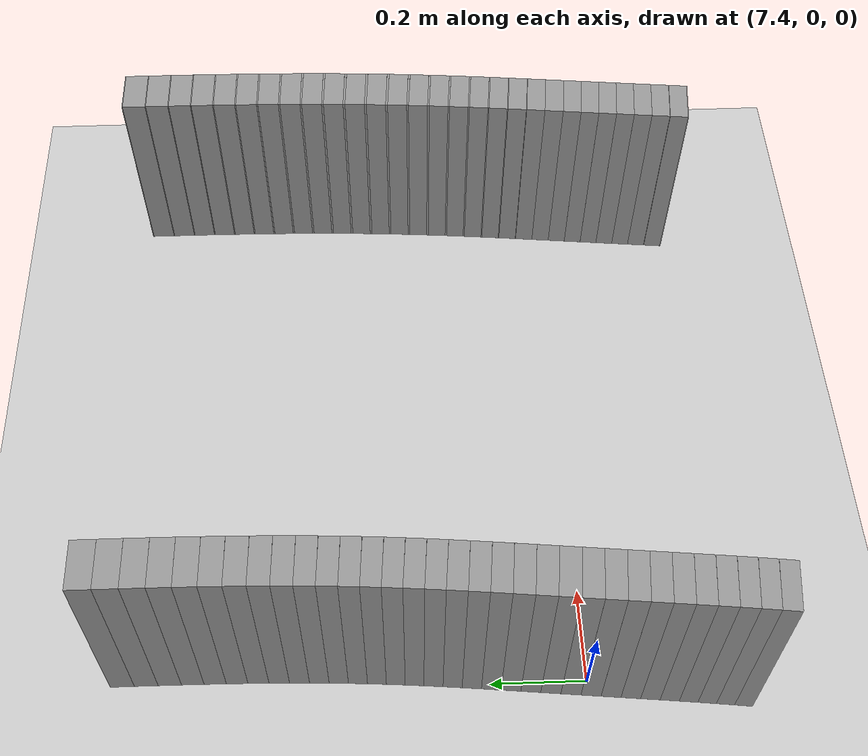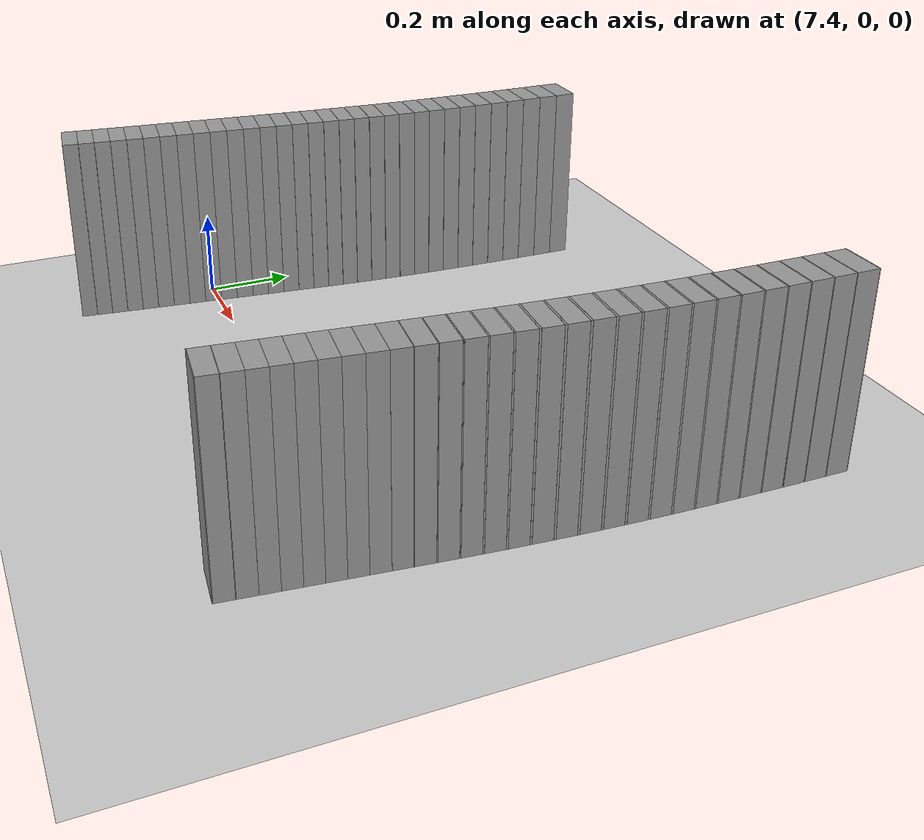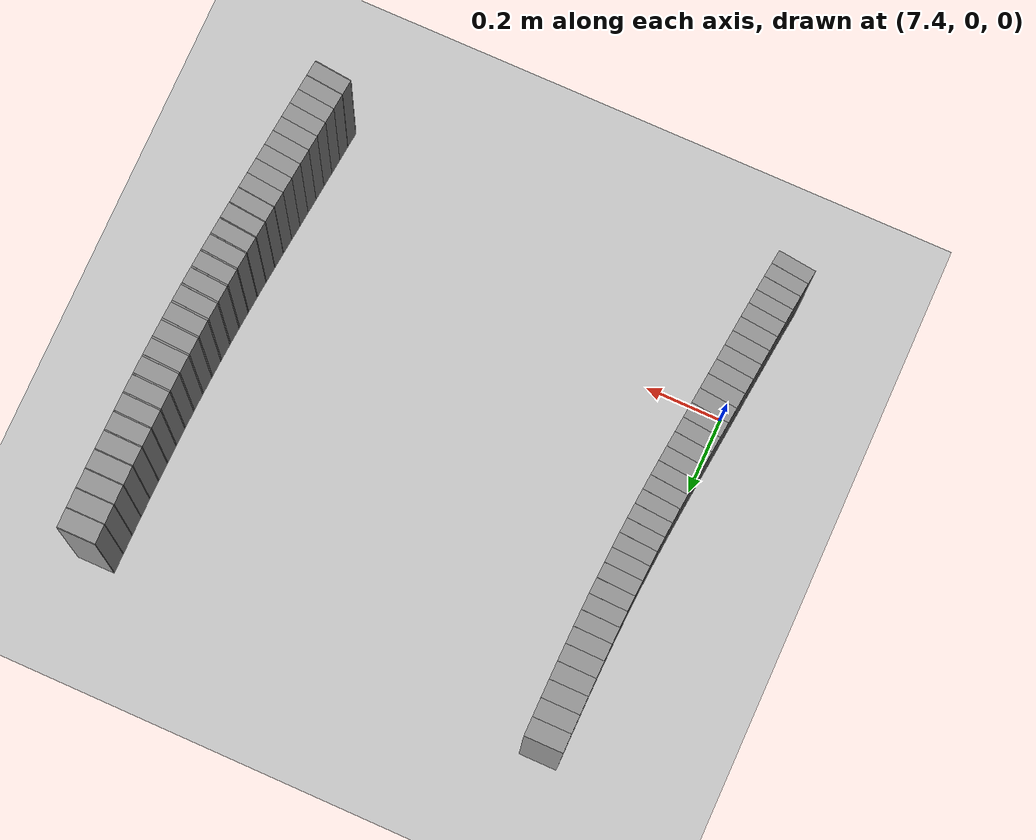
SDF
<sdf version="1.6">
 <world name="default">
  <include><uri>model://ground_plane</uri></include>
  <include><uri>model://sun</uri></include>
  <model name="wall_723_outward">
   <static>true</static>
   <link name="link">
    <collision name="collision">
     <geometry><box><size>0.036213933264388556 0.1 0.45</size></box></geometry>
    </collision>
    <visual name="visual">
     <geometry><box><size>0.036213933264388556 0.1 0.45</size></box></geometry>
     <material>
      <script><uri>file://media/materials/scripts/gazebo.material</uri><name>Gazebo/Gray</name></script>
     </material>
    </visual>
   </link>
   <pose>7.38594994053062 -0.31619066393449397 0.225 0 0 1.4495437734947556</pose>
  </model>
  <model name="wall_724_outward">
   <static>true</static>
   <link name="link">
    <collision name="collision">
     <geometry><box><size>0.036745178594355055 0.1 0.45</size></box></geometry>
    </collision>
    <visual name="visual">
     <geometry><box><size>0.036745178594355055 0.1 0.45</size></box></geometry>
     <material>
      <script><uri>file://media/materials/scripts/gazebo.material</uri><name>Gazebo/Gray</name></script>
     </material>
    </visual>
   </link>
   <pose>7.39025472776831 -0.2799661524615926 0.225 0 0 1.4554427335672206</pose>
  </model>
  <model name="wall_725_outward">
   <static>true</static>
   <link name="link">
    <collision name="collision">
     <geometry><box><size>0.037352697932077183 0.1 0.45</size></box></geometry>
    </collision>
    <visual name="visual">
     <geometry><box><size>0.037352697932077183 0.1 0.45</size></box></geometry>
     <material>
      <script><uri>file://media/materials/scripts/gazebo.material</uri><name>Gazebo/Gray</name></script>
     </material>
    </visual>
   </link>
   <pose>7.394428628874721 -0.24315318950826725 0.225 0 0 1.4603117012523679</pose>
  </model>
  <model name="wall_726_outward">
   <static>true</static>
   <link name="link">
    <collision name="collision">
     <geometry><box><size>0.03800556490705668 0.1 0.45</size></box></geometry>
    </collision>
    <visual name="visual">
     <geometry><box><size>0.03800556490705668 0.1 0.45</size></box></geometry>
     <material>
      <script><uri>file://media/materials/scripts/gazebo.material</uri><name>Gazebo/Gray</name></script>
     </material>
    </visual>
   </link>
   <pose>7.398512394519603 -0.20569608301618028 0.225 0 0 1.4640561065074442</pose>
  </model>
  <model name="wall_727_outward">
   <static>true</static>
   <link name="link">
    <collision name="collision">
     <geometry><box><size>0.038668028377005316 0.1 0.45</size></box></geometry>
    </collision>
    <visual name="visual">
     <geometry><box><size>0.038668028377005316 0.1 0.45</size></box></geometry>
     <material>
      <script><uri>file://media/materials/scripts/gazebo.material</uri><name>Gazebo/Gray</name></script>
     </material>
    </visual>
   </link>
   <pose>7.402546821744884 -0.1675721941736497 0.225 0 0 1.4666506758473807</pose>
  </model>
  <model name="wall_728_outward">
   <static>true</static>
   <link name="link">
    <collision name="collision">
     <geometry><box><size>0.03929286062176304 0.1 0.45</size></box></geometry>
    </collision>
    <visual name="visual">
     <geometry><box><size>0.03929286062176304 0.1 0.45</size></box></geometry>
     <material>
      <script><uri>file://media/materials/scripts/gazebo.material</uri><name>Gazebo/Gray</name></script>
     </material>
    </visual>
   </link>
   <pose>7.4065697174644916 -0.12879990377386055 0.225 0 0 1.4681558475595902</pose>
  </model>
  <model name="wall_729_outward">
   <static>true</static>
   <link name="link">
    <collision name="collision">
     <geometry><box><size>0.03979525407327376 0.1 0.45</size></box></geometry>
    </collision>
    <visual name="visual">
     <geometry><box><size>0.03979525407327376 0.1 0.45</size></box></geometry>
     <material>
      <script><uri>file://media/materials/scripts/gazebo.material</uri><name>Gazebo/Gray</name></script>
     </material>
    </visual>
   </link>
   <pose>7.41061016438694 -0.08946280761945022 0.225 0 0 1.4687242753998215</pose>
  </model>
  <model name="wall_730_outward">
   <static>true</static>
   <link name="link">
    <collision name="collision">
     <geometry><box><size>0.040144140713708996 0.1 0.45</size></box></geometry>
    </collision>
    <visual name="visual">
     <geometry><box><size>0.040144140713708996 0.1 0.45</size></box></geometry>
     <material>
      <script><uri>file://media/materials/scripts/gazebo.material</uri><name>Gazebo/Gray</name></script>
     </material>
    </visual>
   </link>
   <pose>7.4146858278760375 -0.04970144863735605 0.225 0 0 1.468576277259668</pose>
  </model>
  <model name="wall_731_outward">
   <static>true</static>
   <link name="link">
    <collision name="collision">
     <geometry><box><size>0.040527757411083026 0.1 0.45</size></box></geometry>
    </collision>
    <visual name="visual">
     <geometry><box><size>0.040527757411083026 0.1 0.45</size></box></geometry>
     <material>
      <script><uri>file://media/materials/scripts/gazebo.material</uri><name>Gazebo/Gray</name></script>
     </material>
    </visual>
   </link>
   <pose>7.418813291802185 -0.009577232807421815 0.225 0 0 1.4680058757506327</pose>
  </model>
  <model name="wall_732_outward">
   <static>true</static>
   <link name="link">
    <collision name="collision">
     <geometry><box><size>0.040752595745444514 0.1 0.45</size></box></geometry>
    </collision>
    <visual name="visual">
     <geometry><box><size>0.040752595745444514 0.1 0.45</size></box></geometry>
     <material>
      <script><uri>file://media/materials/scripts/gazebo.material</uri><name>Gazebo/Gray</name></script>
     </material>
    </visual>
   </link>
   <pose>7.422996754371545 0.030847047185561444 0.225 0 0 1.46734508425111</pose>
  </model>
  <model name="wall_733_outward">
   <static>true</static>
   <link name="link">
    <collision name="collision">
     <geometry><box><size>0.04079668458981946 0.1 0.45</size></box></geometry>
    </collision>
    <visual name="visual">
     <geometry><box><size>0.04079668458981946 0.1 0.45</size></box></geometry>
     <material>
      <script><uri>file://media/materials/scripts/gazebo.material</uri><name>Gazebo/Gray</name></script>
     </material>
    </visual>
   </link>
   <pose>7.427216298480538 0.07140276994754437 0.225 0 0 1.4669075603256816</pose>
  </model>
  <model name="wall_734_outward">
   <static>true</static>
   <link name="link">
    <collision name="collision">
     <geometry><box><size>0.04050996226966357 0.1 0.45</size></box></geometry>
    </collision>
    <visual name="visual">
     <geometry><box><size>0.04050996226966357 0.1 0.45</size></box></geometry>
     <material>
      <script><uri>file://media/materials/scripts/gazebo.material</uri><name>Gazebo/Gray</name></script>
     </material>
    </visual>
   </link>
   <pose>7.431430127927049 0.11183711603106883 0.225 0 0 1.4670068922244943</pose>
  </model>
  <model name="wall_735_outward">
   <static>true</static>
   <link name="link">
    <collision name="collision">
     <geometry><box><size>0.040243491667796685 0.1 0.45</size></box></geometry>
    </collision>
    <visual name="visual">
     <geometry><box><size>0.040243491667796685 0.1 0.45</size></box></geometry>
     <material>
      <script><uri>file://media/materials/scripts/gazebo.material</uri><name>Gazebo/Gray</name></script>
     </material>
    </visual>
   </link>
   <pose>7.435595145040496 0.1519984454204576 0.225 0 0 1.4679132775247115</pose>
  </model>
  <model name="wall_736_outward">
   <static>true</static>
   <link name="link">
    <collision name="collision">
     <geometry><box><size>0.039909157392282964 0.1 0.45</size></box></geometry>
    </collision>
    <visual name="visual">
     <geometry><box><size>0.039909157392282964 0.1 0.45</size></box></geometry>
     <material>
      <script><uri>file://media/materials/scripts/gazebo.material</uri><name>Gazebo/Gray</name></script>
     </material>
    </visual>
   </link>
   <pose>7.43967312280118 0.19186673381568795 0.225 0 0 1.4698238427092851</pose>
  </model>
  <model name="wall_737_outward">
   <static>true</static>
   <link name="link">
    <collision name="collision">
     <geometry><box><size>0.03954947602758884 0.1 0.45</size></box></geometry>
    </collision>
    <visual name="visual">
     <geometry><box><size>0.03954947602758884 0.1 0.45</size></box></geometry>
     <material>
      <script><uri>file://media/materials/scripts/gazebo.material</uri><name>Gazebo/Gray</name></script>
     </material>
    </visual>
   </link>
   <pose>7.44361830550032 0.23139963812282188 0.225 0 0 1.472851333756722</pose>
  </model>
  <model name="wall_738_outward">
   <static>true</static>
   <link name="link">
    <collision name="collision">
     <geometry><box><size>0.03921505452156786 0.1 0.45</size></box></geometry>
    </collision>
    <visual name="visual">
     <geometry><box><size>0.03921505452156786 0.1 0.45</size></box></geometry>
     <material>
      <script><uri>file://media/materials/scripts/gazebo.material</uri><name>Gazebo/Gray</name></script>
     </material>
    </visual>
   </link>
   <pose>7.447387848212765 0.27060099767016776 0.225 0 0 1.4770316136638229</pose>
  </model>
  <model name="wall_739_outward">
   <static>true</static>
   <link name="link">
    <collision name="collision">
     <geometry><box><size>0.03894925963270935 0.1 0.45</size></box></geometry>
    </collision>
    <visual name="visual">
     <geometry><box><size>0.03894925963270935 0.1 0.45</size></box></geometry>
     <material>
      <script><uri>file://media/materials/scripts/gazebo.material</uri><name>Gazebo/Gray</name></script>
     </material>
    </visual>
   </link>
   <pose>7.450944942895108 0.3095208062927536 0.225 0 0 1.4822943945767697</pose>
  </model>
  <model name="wall_740_outward">
   <static>true</static>
   <link name="link">
    <collision name="collision">
     <geometry><box><size>0.03878622096743389 0.1 0.45</size></box></geometry>
    </collision>
    <visual name="visual">
     <geometry><box><size>0.03878622096743389 0.1 0.45</size></box></geometry>
     <material>
      <script><uri>file://media/materials/scripts/gazebo.material</uri><name>Gazebo/Gray</name></script>
     </material>
    </visual>
   </link>
   <pose>7.454260007884426 0.3482467270276123 0.225 0 0 1.4885211691429439</pose>
  </model>
  <model name="wall_741_outward">
   <static>true</static>
   <link name="link">
    <collision name="collision">
     <geometry><box><size>0.03876193145462637 0.1 0.45</size></box></geometry>
    </collision>
    <visual name="visual">
     <geometry><box><size>0.03876193145462637 0.1 0.45</size></box></geometry>
     <material>
      <script><uri>file://media/materials/scripts/gazebo.material</uri><name>Gazebo/Gray</name></script>
     </material>
    </visual>
   </link>
   <pose>7.4573112373206065 0.3869003238708277 0.225 0 0 1.4955247981549085</pose>
  </model>
  <model name="wall_742_outward">
   <static>true</static>
   <link name="link">
    <collision name="collision">
     <geometry><box><size>0.03889911755652745 0.1 0.45</size></box></geometry>
    </collision>
    <visual name="visual">
     <geometry><box><size>0.03889911755652745 0.1 0.45</size></box></geometry>
     <material>
      <script><uri>file://media/materials/scripts/gazebo.material</uri><name>Gazebo/Gray</name></script>
     </material>
    </visual>
   </link>
   <pose>7.460084811900798 0.42563138919874965 0.225 0 0 1.5030763668896983</pose>
  </model>
  <model name="wall_743_outward">
   <static>true</static>
   <link name="link">
    <collision name="collision">
     <geometry><box><size>0.03921418257245954 0.1 0.45</size></box></geometry>
    </collision>
    <visual name="visual">
     <geometry><box><size>0.03921418257245954 0.1 0.45</size></box></geometry>
     <material>
      <script><uri>file://media/materials/scripts/gazebo.material</uri><name>Gazebo/Gray</name></script>
     </material>
    </visual>
   </link>
   <pose>7.46257422676623 0.4646083216850898 0.225 0 0 1.5109200622255066</pose>
  </model>
  <model name="wall_744_outward">
   <static>true</static>
   <link name="link">
    <collision name="collision">
     <geometry><box><size>0.0397077498544705 0.1 0.45</size></box></geometry>
    </collision>
    <visual name="visual">
     <geometry><box><size>0.0397077498544705 0.1 0.45</size></box></geometry>
     <material>
      <script><uri>file://media/materials/scripts/gazebo.material</uri><name>Gazebo/Gray</name></script>
     </material>
    </visual>
   </link>
   <pose>7.464779428469265 0.5040073163549572 0.225 0 0 1.5187979710569919</pose>
  </model>
  <model name="wall_745_outward">
   <static>true</static>
   <link name="link">
    <collision name="collision">
     <geometry><box><size>0.04037026933674354 0.1 0.45</size></box></geometry>
    </collision>
    <visual name="visual">
     <geometry><box><size>0.04037026933674354 0.1 0.45</size></box></geometry>
     <material>
      <script><uri>file://media/materials/scripts/gazebo.material</uri><name>Gazebo/Gray</name></script>
     </material>
    </visual>
   </link>
   <pose>7.466705767347345 0.5439996646013424 0.225 0 0 1.5264702339205196</pose>
  </model>
  <model name="wall_746_outward">
   <static>true</static>
   <link name="link">
    <collision name="collision">
     <geometry><box><size>0.04118557421784616 0.1 0.45</size></box></geometry>
    </collision>
    <visual name="visual">
     <geometry><box><size>0.04118557421784616 0.1 0.45</size></box></geometry>
     <material>
      <script><uri>file://media/materials/scripts/gazebo.material</uri><name>Gazebo/Gray</name></script>
     </material>
    </visual>
   </link>
   <pose>7.468363290733695 0.5847436163337587 0.225 0 0 1.5337317497102874</pose>
  </model>
  <model name="wall_747_outward">
   <static>true</static>
   <link name="link">
    <collision name="collision">
     <geometry><box><size>0.04212380520808145 0.1 0.45</size></box></geometry>
    </collision>
    <visual name="visual">
     <geometry><box><size>0.04212380520808145 0.1 0.45</size></box></geometry>
     <material>
      <script><uri>file://media/materials/scripts/gazebo.material</uri><name>Gazebo/Gray</name></script>
     </material>
    </visual>
   </link>
   <pose>7.469766060619982 0.6263744463677686 0.225 0 0 1.5404201501985622</pose>
  </model>
  <model name="wall_748_outward">
   <static>true</static>
   <link name="link">
    <collision name="collision">
     <geometry><box><size>0.04315548624088915 0.1 0.45</size></box></geometry>
    </collision>
    <visual name="visual">
     <geometry><box><size>0.04315548624088915 0.1 0.45</size></box></geometry>
     <material>
      <script><uri>file://media/materials/scripts/gazebo.material</uri><name>Gazebo/Gray</name></script>
     </material>
    </visual>
   </link>
   <pose>7.470931356676371 0.6689979731071856 0.225 0 0 1.546434818786263</pose>
  </model>
  <model name="wall_749_outward">
   <static>true</static>
   <link name="link">
    <collision name="collision">
     <geometry><box><size>0.044244051309754194 0.1 0.45</size></box></geometry>
    </collision>
    <visual name="visual">
     <geometry><box><size>0.044244051309754194 0.1 0.45</size></box></geometry>
     <material>
      <script><uri>file://media/materials/scripts/gazebo.material</uri><name>Gazebo/Gray</name></script>
     </material>
    </visual>
   </link>
   <pose>7.471879003201284 0.7126873131684515 0.225 0 0 1.5517177049844764</pose>
  </model>
  <model name="wall_750_outward">
   <static>true</static>
   <link name="link">
    <collision name="collision">
     <geometry><box><size>0.04534491543074859 0.1 0.45</size></box></geometry>
    </collision>
    <visual name="visual">
     <geometry><box><size>0.04534491543074859 0.1 0.45</size></box></geometry>
     <material>
      <script><uri>file://media/materials/scripts/gazebo.material</uri><name>Gazebo/Gray</name></script>
     </material>
    </visual>
   </link>
   <pose>7.472630128481372 0.7574753819840552 0.225 0 0 1.5562807112355506</pose>
  </model>
  <model name="wall_751_outward">
   <static>true</static>
   <link name="link">
    <collision name="collision">
     <geometry><box><size>0.04642965810769729 0.1 0.45</size></box></geometry>
    </collision>
    <visual name="visual">
     <geometry><box><size>0.04642965810769729 0.1 0.45</size></box></geometry>
     <material>
      <script><uri>file://media/materials/scripts/gazebo.material</uri><name>Gazebo/Gray</name></script>
     </material>
    </visual>
   </link>
   <pose>7.473205331770245 0.8033589756213675 0.225 0 0 1.560194707643644</pose>
  </model>
  <model name="wall_752_outward">
   <static>true</static>
   <link name="link">
    <collision name="collision">
     <geometry><box><size>0.04746692070408857 0.1 0.45</size></box></geometry>
    </collision>
    <visual name="visual">
     <geometry><box><size>0.04746692070408857 0.1 0.45</size></box></geometry>
     <material>
      <script><uri>file://media/materials/scripts/gazebo.material</uri><name>Gazebo/Gray</name></script>
     </material>
    </visual>
   </link>
   <pose>7.473623688672667 0.8503053353791755 0.225 0 0 1.5635387147146893</pose>
  </model>
  <model name="wall_753_outward">
   <static>true</static>
   <link name="link">
    <collision name="collision">
     <geometry><box><size>0.048423230044006234 0.1 0.45</size></box></geometry>
    </collision>
    <visual name="visual">
     <geometry><box><size>0.048423230044006234 0.1 0.45</size></box></geometry>
     <material>
      <script><uri>file://media/materials/scripts/gazebo.material</uri><name>Gazebo/Gray</name></script>
     </material>
    </visual>
   </link>
   <pose>7.473901320823446 0.8982495563448987 0.225 0 0 1.5664436329728801</pose>
  </model>
  <model name="wall_754_outward">
   <static>true</static>
   <link name="link">
    <collision name="collision">
     <geometry><box><size>0.049273394679954556 0.1 0.45</size></box></geometry>
    </collision>
    <visual name="visual">
     <geometry><box><size>0.049273394679954556 0.1 0.45</size></box></geometry>
     <material>
      <script><uri>file://media/materials/scripts/gazebo.material</uri><name>Gazebo/Gray</name></script>
     </material>
    </visual>
   </link>
   <pose>7.474049346788501 0.947097602450694 0.225 0 0 1.5690655521135461</pose>
  </model>
  <model name="wall_1052_inward">
   <static>true</static>
   <link name="link">
    <collision name="collision">
     <geometry><box><size>0.0015567411672938597 0.1 0.45</size></box></geometry>
    </collision>
    <visual name="visual">
     <geometry><box><size>0.0015567411672938597 0.1 0.45</size></box></geometry>
     <material>
      <script><uri>file://media/materials/scripts/gazebo.material</uri><name>Gazebo/Gray</name></script>
     </material>
    </visual>
   </link>
   <pose>8.593872157058001 -0.3130986373322244 0.225 0 0 1.465353391178187</pose>
  </model>
  <model name="wall_1053_inward">
   <static>true</static>
   <link name="link">
    <collision name="collision">
     <geometry><box><size>0.03989795121482421 0.1 0.45</size></box></geometry>
    </collision>
    <visual name="visual">
     <geometry><box><size>0.03989795121482421 0.1 0.45</size></box></geometry>
     <material>
      <script><uri>file://media/materials/scripts/gazebo.material</uri><name>Gazebo/Gray</name></script>
     </material>
    </visual>
   </link>
   <pose>8.596027924106872 -0.29248370288113484 0.225 0 0 1.4666506758473705</pose>
  </model>
  <model name="wall_1054_inward">
   <static>true</static>
   <link name="link">
    <collision name="collision">
     <geometry><box><size>0.0009031029420845698 0.1 0.45</size></box></geometry>
    </collision>
    <visual name="visual">
     <geometry><box><size>0.0009031029420845698 0.1 0.45</size></box></geometry>
     <material>
      <script><uri>file://media/materials/scripts/gazebo.material</uri><name>Gazebo/Gray</name></script>
     </material>
    </visual>
   </link>
   <pose>8.598148373630238 -0.2721936759270962 0.225 0 0 1.467403261702257</pose>
  </model>
  <model name="wall_1055_inward">
   <static>true</static>
   <link name="link">
    <collision name="collision">
     <geometry><box><size>0.0402559972625158 0.1 0.45</size></box></geometry>
    </collision>
    <visual name="visual">
     <geometry><box><size>0.0402559972625158 0.1 0.45</size></box></geometry>
     <material>
      <script><uri>file://media/materials/scripts/gazebo.material</uri><name>Gazebo/Gray</name></script>
     </material>
    </visual>
   </link>
   <pose>8.600257251424804 -0.2517224641486036 0.225 0 0 1.4681582554755903</pose>
  </model>
  <model name="wall_1056_inward">
   <static>true</static>
   <link name="link">
    <collision name="collision">
     <geometry><box><size>0.03992133377361865 0.1 0.45</size></box></geometry>
    </collision>
    <visual name="visual">
     <geometry><box><size>0.03992133377361865 0.1 0.45</size></box></geometry>
     <material>
      <script><uri>file://media/materials/scripts/gazebo.material</uri><name>Gazebo/Gray</name></script>
     </material>
    </visual>
   </link>
   <pose>8.604353415235355 -0.2118436174208122 0.225 0 0 1.4687242753998664</pose>
  </model>
  <model name="wall_1057_inward">
   <static>true</static>
   <link name="link">
    <collision name="collision">
     <geometry><box><size>0.0398389952322798 0.1 0.45</size></box></geometry>
    </collision>
    <visual name="visual">
     <geometry><box><size>0.0398389952322798 0.1 0.45</size></box></geometry>
     <material>
      <script><uri>file://media/materials/scripts/gazebo.material</uri><name>Gazebo/Gray</name></script>
     </material>
    </visual>
   </link>
   <pose>8.608419936567401 -0.17217132335669194 0.225 0 0 1.4685761132105635</pose>
  </model>
  <model name="wall_1058_inward">
   <static>true</static>
   <link name="link">
    <collision name="collision">
     <geometry><box><size>0.0398138830897318 0.1 0.45</size></box></geometry>
    </collision>
    <visual name="visual">
     <geometry><box><size>0.0398138830897318 0.1 0.45</size></box></geometry>
     <material>
      <script><uri>file://media/materials/scripts/gazebo.material</uri><name>Gazebo/Gray</name></script>
     </material>
    </visual>
   </link>
   <pose>8.612495257811444 -0.13255394228523582 0.225 0 0 1.4680034481905777</pose>
  </model>
  <model name="wall_1059_inward">
   <static>true</static>
   <link name="link">
    <collision name="collision">
     <geometry><box><size>0.040026459000372994 0.1 0.45</size></box></geometry>
    </collision>
    <visual name="visual">
     <geometry><box><size>0.040026459000372994 0.1 0.45</size></box></geometry>
     <material>
      <script><uri>file://media/materials/scripts/gazebo.material</uri><name>Gazebo/Gray</name></script>
     </material>
    </visual>
   </link>
   <pose>8.61660471452001 -0.09284585435031262 0.225 0 0 1.4673418621539924</pose>
  </model>
  <model name="wall_1060_inward">
   <static>true</static>
   <link name="link">
    <collision name="collision">
     <geometry><box><size>0.04049521166587355 0.1 0.45</size></box></geometry>
    </collision>
    <visual name="visual">
     <geometry><box><size>0.04049521166587355 0.1 0.45</size></box></geometry>
     <material>
      <script><uri>file://media/materials/scripts/gazebo.material</uri><name>Gazebo/Gray</name></script>
     </material>
    </visual>
   </link>
   <pose>8.620771224781151 -0.05280119207096172 0.225 0 0 1.4669062395499377</pose>
  </model>
  <model name="wall_1061_inward">
   <static>true</static>
   <link name="link">
    <collision name="collision">
     <geometry><box><size>0.041355927330377094 0.1 0.45</size></box></geometry>
    </collision>
    <visual name="visual">
     <geometry><box><size>0.041355927330377094 0.1 0.45</size></box></geometry>
     <material>
      <script><uri>file://media/materials/scripts/gazebo.material</uri><name>Gazebo/Gray</name></script>
     </material>
    </visual>
   </link>
   <pose>8.625013148928936 -0.012096053408729542 0.225 0 0 1.4670128517154808</pose>
  </model>
  <model name="wall_1062_inward">
   <static>true</static>
   <link name="link">
    <collision name="collision">
     <geometry><box><size>0.04108857700661307 0.1 0.45</size></box></geometry>
    </collision>
    <visual name="visual">
     <geometry><box><size>0.04108857700661307 0.1 0.45</size></box></geometry>
     <material>
      <script><uri>file://media/materials/scripts/gazebo.material</uri><name>Gazebo/Gray</name></script>
     </material>
    </visual>
   </link>
   <pose>8.629265261643225 0.028906303436736704 0.225 0 0 1.467913277524708</pose>
  </model>
  <model name="wall_1063_inward">
   <static>true</static>
   <link name="link">
    <collision name="collision">
     <geometry><box><size>0.0011463389363976027 0.1 0.45</size></box></geometry>
    </collision>
    <visual name="visual">
     <geometry><box><size>0.0011463389363976027 0.1 0.45</size></box></geometry>
     <material>
      <script><uri>file://media/materials/scripts/gazebo.material</uri><name>Gazebo/Gray</name></script>
     </material>
    </visual>
   </link>
   <pose>8.631433514619442 0.04991215260937533 0.225 0 0 1.4688685601169646</pose>
  </model>
  <model name="wall_1064_inward">
   <static>true</static>
   <link name="link">
    <collision name="collision">
     <geometry><box><size>0.041390575130017065 0.1 0.45</size></box></geometry>
    </collision>
    <visual name="visual">
     <geometry><box><size>0.041390575130017065 0.1 0.45</size></box></geometry>
     <material>
      <script><uri>file://media/materials/scripts/gazebo.material</uri><name>Gazebo/Gray</name></script>
     </material>
    </visual>
   </link>
   <pose>8.633577940974101 0.0710722256092038 0.225 0 0 1.4698238427092898</pose>
  </model>
  <model name="wall_1065_inward">
   <static>true</static>
   <link name="link">
    <collision name="collision">
     <geometry><box><size>0.001816493934724806 0.1 0.45</size></box></geometry>
    </collision>
    <visual name="visual">
     <geometry><box><size>0.001816493934724806 0.1 0.45</size></box></geometry>
     <material>
      <script><uri>file://media/materials/scripts/gazebo.material</uri><name>Gazebo/Gray</name></script>
     </material>
    </visual>
   </link>
   <pose>8.63575423079406 0.09256586243130228 0.225 0 0 1.4713375882333617</pose>
  </model>
  <model name="wall_1066_inward">
   <static>true</static>
   <link name="link">
    <collision name="collision">
     <geometry><box><size>0.04171180983391794 0.1 0.45</size></box></geometry>
    </collision>
    <visual name="visual">
     <geometry><box><size>0.04171180983391794 0.1 0.45</size></box></geometry>
     <material>
      <script><uri>file://media/materials/scripts/gazebo.material</uri><name>Gazebo/Gray</name></script>
     </material>
    </visual>
   </link>
   <pose>8.637883882001125 0.11422556809816603 0.225 0 0 1.4728513337567095</pose>
  </model>
  <model name="wall_1067_inward">
   <static>true</static>
   <link name="link">
    <collision name="collision">
     <geometry><box><size>0.0025081661180470227 0.1 0.45</size></box></geometry>
    </collision>
    <visual name="visual">
     <geometry><box><size>0.0025081661180470227 0.1 0.45</size></box></geometry>
     <material>
      <script><uri>file://media/materials/scripts/gazebo.material</uri><name>Gazebo/Gray</name></script>
     </material>
    </visual>
   </link>
   <pose>8.640043374914018 0.13622984141936845 0.225 0 0 1.4749414737097994</pose>
  </model>
  <model name="wall_1068_inward">
   <static>true</static>
   <link name="link">
    <collision name="collision">
     <geometry><box><size>0.042047978237816204 0.1 0.45</size></box></geometry>
    </collision>
    <visual name="visual">
     <geometry><box><size>0.042047978237816204 0.1 0.45</size></box></geometry>
     <material>
      <script><uri>file://media/materials/scripts/gazebo.material</uri><name>Gazebo/Gray</name></script>
     </material>
    </visual>
   </link>
   <pose>8.642131821874408 0.15840980476638072 0.225 0 0 1.4770316136638413</pose>
  </model>
  <model name="wall_1069_inward">
   <static>true</static>
   <link name="link">
    <collision name="collision">
     <geometry><box><size>0.003157664903696562 0.1 0.45</size></box></geometry>
    </collision>
    <visual name="visual">
     <geometry><box><size>0.003157664903696562 0.1 0.45</size></box></geometry>
     <material>
      <script><uri>file://media/materials/scripts/gazebo.material</uri><name>Gazebo/Gray</name></script>
     </material>
    </visual>
   </link>
   <pose>8.644243928050848 0.1809137226612954 0.225 0 0 1.4796630041205951</pose>
  </model>
  <model name="wall_1070_inward">
   <static>true</static>
   <link name="link">
    <collision name="collision">
     <geometry><box><size>0.04239613595613506 0.1 0.45</size></box></geometry>
    </collision>
    <visual name="visual">
     <geometry><box><size>0.04239613595613506 0.1 0.45</size></box></geometry>
     <material>
      <script><uri>file://media/materials/scripts/gazebo.material</uri><name>Gazebo/Gray</name></script>
     </material>
    </visual>
   </link>
   <pose>8.646261235066792 0.20360110756693944 0.225 0 0 1.482294394576772</pose>
  </model>
  <model name="wall_1071_inward">
   <static>true</static>
   <link name="link">
    <collision name="collision">
     <geometry><box><size>0.0037360587039728587 0.1 0.45</size></box></geometry>
    </collision>
    <visual name="visual">
     <geometry><box><size>0.0037360587039728587 0.1 0.45</size></box></geometry>
     <material>
      <script><uri>file://media/materials/scripts/gazebo.material</uri><name>Gazebo/Gray</name></script>
     </material>
    </visual>
   </link>
   <pose>8.648294171463636 0.226577435206702 0.225 0 0 1.4854077818598257</pose>
  </model>
  <model name="wall_1072_inward">
   <static>true</static>
   <link name="link">
    <collision name="collision">
     <geometry><box><size>0.04275535666515608 0.1 0.45</size></box></geometry>
    </collision>
    <visual name="visual">
     <geometry><box><size>0.04275535666515608 0.1 0.45</size></box></geometry>
     <material>
      <script><uri>file://media/materials/scripts/gazebo.material</uri><name>Gazebo/Gray</name></script>
     </material>
    </visual>
   </link>
   <pose>8.650210354197391 0.24974402283627434 0.225 0 0 1.48852116914293</pose>
  </model>
  <model name="wall_1073_inward">
   <static>true</static>
   <link name="link">
    <collision name="collision">
     <geometry><box><size>0.004202168818851256 0.1 0.45</size></box></geometry>
    </collision>
    <visual name="visual">
     <geometry><box><size>0.004202168818851256 0.1 0.45</size></box></geometry>
     <material>
      <script><uri>file://media/materials/scripts/gazebo.material</uri><name>Gazebo/Gray</name></script>
     </material>
    </visual>
   </link>
   <pose>8.65213256071213 0.27314395598180163 0.225 0 0 1.4920229836486785</pose>
  </model>
  <model name="wall_1074_inward">
   <static>true</static>
   <link name="link">
    <collision name="collision">
     <geometry><box><size>0.04312851013310714 0.1 0.45</size></box></geometry>
    </collision>
    <visual name="visual">
     <geometry><box><size>0.04312851013310714 0.1 0.45</size></box></geometry>
     <material>
      <script><uri>file://media/materials/scripts/gazebo.material</uri><name>Gazebo/Gray</name></script>
     </material>
    </visual>
   </link>
   <pose>8.653919541149993 0.29674171938908356 0.225 0 0 1.4955247981549125</pose>
  </model>
  <model name="wall_1075_inward">
   <static>true</static>
   <link name="link">
    <collision name="collision">
     <geometry><box><size>0.0045309304749452835 0.1 0.45</size></box></geometry>
    </collision>
    <visual name="visual">
     <geometry><box><size>0.0045309304749452835 0.1 0.45</size></box></geometry>
     <material>
      <script><uri>file://media/materials/scripts/gazebo.material</uri><name>Gazebo/Gray</name></script>
     </material>
    </visual>
   </link>
   <pose>8.65570301643137 0.32050459146325716 0.225 0 0 1.49930058252234</pose>
  </model>
  <model name="wall_1076_inward">
   <static>true</static>
   <link name="link">
    <collision name="collision">
     <geometry><box><size>0.04351771960786753 0.1 0.45</size></box></geometry>
    </collision>
    <visual name="visual">
     <geometry><box><size>0.04351771960786753 0.1 0.45</size></box></geometry>
     <material>
      <script><uri>file://media/materials/scripts/gazebo.material</uri><name>Gazebo/Gray</name></script>
     </material>
    </visual>
   </link>
   <pose>8.657337232721513 0.3444732549231083 0.225 0 0 1.5030763668896916</pose>
  </model>
  <model name="wall_1077_inward">
   <static>true</static>
   <link name="link">
    <collision name="collision">
     <geometry><box><size>0.00470620513719575 0.1 0.45</size></box></geometry>
    </collision>
    <visual name="visual">
     <geometry><box><size>0.00470620513719575 0.1 0.45</size></box></geometry>
     <material>
      <script><uri>file://media/materials/scripts/gazebo.material</uri><name>Gazebo/Gray</name></script>
     </material>
    </visual>
   </link>
   <pose>8.658959637526575 0.36853055619714215 0.225 0 0 1.5069982145577798</pose>
  </model>
  <model name="wall_1078_inward">
   <static>true</static>
   <link name="link">
    <collision name="collision">
     <geometry><box><size>0.04393068811009366 0.1 0.45</size></box></geometry>
    </collision>
    <visual name="visual">
     <geometry><box><size>0.04393068811009366 0.1 0.45</size></box></geometry>
     <material>
      <script><uri>file://media/materials/scripts/gazebo.material</uri><name>Gazebo/Gray</name></script>
     </material>
    </visual>
   </link>
   <pose>8.660424076232914 0.39280485269520643 0.225 0 0 1.510920062225504</pose>
  </model>
  <model name="wall_1079_inward">
   <static>true</static>
   <link name="link">
    <collision name="collision">
     <geometry><box><size>0.004726733076047922 0.1 0.45</size></box></geometry>
    </collision>
    <visual name="visual">
     <geometry><box><size>0.004726733076047922 0.1 0.45</size></box></geometry>
     <material>
      <script><uri>file://media/materials/scripts/gazebo.material</uri><name>Gazebo/Gray</name></script>
     </material>
    </visual>
   </link>
   <pose>8.661870624691229 0.41709050383418655 0.225 0 0 1.5148590166412195</pose>
  </model>
  <model name="wall_1080_inward">
   <static>true</static>
   <link name="link">
    <collision name="collision">
     <geometry><box><size>0.044372824876427984 0.1 0.45</size></box></geometry>
    </collision>
    <visual name="visual">
     <geometry><box><size>0.044372824876427984 0.1 0.45</size></box></geometry>
     <material>
      <script><uri>file://media/materials/scripts/gazebo.material</uri><name>Gazebo/Gray</name></script>
     </material>
    </visual>
   </link>
   <pose>8.663155893281878 0.4416065989329354 0.225 0 0 1.5187979710570023</pose>
  </model>
  <model name="wall_1081_inward">
   <static>true</static>
   <link name="link">
    <collision name="collision">
     <geometry><box><size>0.004603346427694212 0.1 0.45</size></box></geometry>
    </collision>
    <visual name="visual">
     <geometry><box><size>0.004603346427694212 0.1 0.45</size></box></geometry>
     <material>
      <script><uri>file://media/materials/scripts/gazebo.material</uri><name>Gazebo/Gray</name></script>
     </material>
    </visual>
   </link>
   <pose>8.664419841287343 0.4660620282455156 0.225 0 0 1.5226341024888919</pose>
  </model>
  <model name="wall_1082_inward">
   <static>true</static>
   <link name="link">
    <collision name="collision">
     <geometry><box><size>0.0448504237956141 0.1 0.45</size></box></geometry>
    </collision>
    <visual name="visual">
     <geometry><box><size>0.0448504237956141 0.1 0.45</size></box></geometry>
     <material>
      <script><uri>file://media/materials/scripts/gazebo.material</uri><name>Gazebo/Gray</name></script>
     </material>
    </visual>
   </link>
   <pose>8.66552434868567 0.4907642174433178 0.225 0 0 1.5264702339205267</pose>
  </model>
  <model name="wall_1083_inward">
   <static>true</static>
   <link name="link">
    <collision name="collision">
     <geometry><box><size>0.004356899901429582 0.1 0.45</size></box></geometry>
    </collision>
    <visual name="visual">
     <geometry><box><size>0.004356899901429582 0.1 0.45</size></box></geometry>
     <material>
      <script><uri>file://media/materials/scripts/gazebo.material</uri><name>Gazebo/Gray</name></script>
     </material>
    </visual>
   </link>
   <pose>8.66660667351618 0.5153440487146869 0.225 0 0 1.5301009918152593</pose>
  </model>
  <model name="wall_1084_inward">
   <static>true</static>
   <link name="link">
    <collision name="collision">
     <geometry><box><size>0.04537056615396427 0.1 0.45</size></box></geometry>
    </collision>
    <visual name="visual">
     <geometry><box><size>0.04537056615396427 0.1 0.45</size></box></geometry>
     <material>
      <script><uri>file://media/materials/scripts/gazebo.material</uri><name>Gazebo/Gray</name></script>
     </material>
    </visual>
   </link>
   <pose>8.667535929717964 0.5401903975717488 0.225 0 0 1.5337317497102698</pose>
  </model>
  <model name="wall_1085_inward">
   <static>true</static>
   <link name="link">
    <collision name="collision">
     <geometry><box><size>0.004013032812893137 0.1 0.45</size></box></geometry>
    </collision>
    <visual name="visual">
     <geometry><box><size>0.004013032812893137 0.1 0.45</size></box></geometry>
     <material>
      <script><uri>file://media/materials/scripts/gazebo.material</uri><name>Gazebo/Gray</name></script>
     </material>
    </visual>
   </link>
   <pose>8.668444205304741 0.5648654758517841 0.225 0 0 1.537075949954523</pose>
  </model>
  <model name="wall_1086_inward">
   <static>true</static>
   <link name="link">
    <collision name="collision">
     <geometry><box><size>0.045934738850651496 0.1 0.45</size></box></geometry>
    </collision>
    <visual name="visual">
     <geometry><box><size>0.045934738850651496 0.1 0.45</size></box></geometry>
     <material>
      <script><uri>file://media/materials/scripts/gazebo.material</uri><name>Gazebo/Gray</name></script>
     </material>
    </visual>
   </link>
   <pose>8.669209406556995 0.5898276257028972 0.225 0 0 1.5404201501985681</pose>
  </model>
  <model name="wall_1087_inward">
   <static>true</static>
   <link name="link">
    <collision name="collision">
     <geometry><box><size>0.0036087957129159447 0.1 0.45</size></box></geometry>
    </collision>
    <visual name="visual">
     <geometry><box><size>0.0036087957129159447 0.1 0.45</size></box></geometry>
     <material>
      <script><uri>file://media/materials/scripts/gazebo.material</uri><name>Gazebo/Gray</name></script>
     </material>
    </visual>
   </link>
   <pose>8.66995633825691 0.6145881219114229 0.225 0 0 1.5434274844921718</pose>
  </model>
  <model name="wall_1088_inward">
   <static>true</static>
   <link name="link">
    <collision name="collision">
     <geometry><box><size>0.04654476180240013 0.1 0.45</size></box></geometry>
    </collision>
    <visual name="visual">
     <geometry><box><size>0.04654476180240013 0.1 0.45</size></box></geometry>
     <material>
      <script><uri>file://media/materials/scripts/gazebo.material</uri><name>Gazebo/Gray</name></script>
     </material>
    </visual>
   </link>
   <pose>8.670572610588415 0.6396573193754493 0.225 0 0 1.5464348187862609</pose>
  </model>
  <model name="wall_1089_inward">
   <static>true</static>
   <link name="link">
    <collision name="collision">
     <geometry><box><size>0.0031697280329477345 0.1 0.45</size></box></geometry>
    </collision>
    <visual name="visual">
     <geometry><box><size>0.0031697280329477345 0.1 0.45</size></box></geometry>
     <material>
      <script><uri>file://media/materials/scripts/gazebo.material</uri><name>Gazebo/Gray</name></script>
     </material>
    </visual>
   </link>
   <pose>8.671173925447324 0.6645072849286058 0.225 0 0 1.5490762618853455</pose>
  </model>
  <model name="wall_1090_inward">
   <static>true</static>
   <link name="link">
    <collision name="collision">
     <geometry><box><size>0.04719782510561296 0.1 0.45</size></box></geometry>
    </collision>
    <visual name="visual">
     <geometry><box><size>0.04719782510561296 0.1 0.45</size></box></geometry>
     <material>
      <script><uri>file://media/materials/scripts/gazebo.material</uri><name>Gazebo/Gray</name></script>
     </material>
    </visual>
   </link>
   <pose>8.671658553504553 0.6896863928751197 0.225 0 0 1.5517177049844828</pose>
  </model>
  <model name="wall_1091_inward">
   <static>true</static>
   <link name="link">
    <collision name="collision">
     <geometry><box><size>0.002737801375482223 0.1 0.45</size></box></geometry>
    </collision>
    <visual name="visual">
     <geometry><box><size>0.002737801375482223 0.1 0.45</size></box></geometry>
     <material>
      <script><uri>file://media/materials/scripts/gazebo.material</uri><name>Gazebo/Gray</name></script>
     </material>
    </visual>
   </link>
   <pose>8.672131753425093 0.7146497182084277 0.225 0 0 1.5539992081101484</pose>
  </model>
  <model name="wall_1092_inward">
   <static>true</static>
   <link name="link">
    <collision name="collision">
     <geometry><box><size>0.04788802010270939 0.1 0.45</size></box></geometry>
    </collision>
    <visual name="visual">
     <geometry><box><size>0.04788802010270939 0.1 0.45</size></box></geometry>
     <material>
      <script><uri>file://media/materials/scripts/gazebo.material</uri><name>Gazebo/Gray</name></script>
     </material>
    </visual>
   </link>
   <pose>8.672502295770764 0.7399599133448351 0.225 0 0 1.5562807112355552</pose>
  </model>
  <model name="wall_1093_inward">
   <static>true</static>
   <link name="link">
    <collision name="collision">
     <geometry><box><size>0.002348396345847928 0.1 0.45</size></box></geometry>
    </collision>
    <visual name="visual">
     <geometry><box><size>0.002348396345847928 0.1 0.45</size></box></geometry>
     <material>
      <script><uri>file://media/materials/scripts/gazebo.material</uri><name>Gazebo/Gray</name></script>
     </material>
    </visual>
   </link>
   <pose>8.672864591528274 0.7650755064795052 0.225 0 0 1.5582377094396431</pose>
  </model>
  <model name="wall_1094_inward">
   <static>true</static>
   <link name="link">
    <collision name="collision">
     <geometry><box><size>0.048607061585271956 0.1 0.45</size></box></geometry>
    </collision>
    <visual name="visual">
     <geometry><box><size>0.048607061585271956 0.1 0.45</size></box></geometry>
     <material>
      <script><uri>file://media/materials/scripts/gazebo.material</uri><name>Gazebo/Gray</name></script>
     </material>
    </visual>
   </link>
   <pose>8.673136989397197 0.7905517770729567 0.225 0 0 1.5601947076436324</pose>
  </model>
  <model name="wall_1095_inward">
   <static>true</static>
   <link name="link">
    <collision name="collision">
     <geometry><box><size>0.002006403307789823 0.1 0.45</size></box></geometry>
    </collision>
    <visual name="visual">
     <geometry><box><size>0.002006403307789823 0.1 0.45</size></box></geometry>
     <material>
      <script><uri>file://media/materials/scripts/gazebo.material</uri><name>Gazebo/Gray</name></script>
     </material>
    </visual>
   </link>
   <pose>8.673403599434295 0.8158571037463678 0.225 0 0 1.5618667111792464</pose>
  </model>
  <model name="wall_1096_inward">
   <static>true</static>
   <link name="link">
    <collision name="collision">
     <geometry><box><size>0.04934159985082995 0.1 0.45</size></box></geometry>
    </collision>
    <visual name="visual">
     <geometry><box><size>0.04934159985082995 0.1 0.45</size></box></geometry>
     <material>
      <script><uri>file://media/materials/scripts/gazebo.material</uri><name>Gazebo/Gray</name></script>
     </material>
    </visual>
   </link>
   <pose>8.673591607044113 0.841530415590434 0.225 0 0 1.5635387147146973</pose>
  </model>
  <model name="wall_1097_inward">
   <static>true</static>
   <link name="link">
    <collision name="collision">
     <geometry><box><size>0.0017429503420733454 0.1 0.45</size></box></geometry>
    </collision>
    <visual name="visual">
     <geometry><box><size>0.0017429503420733454 0.1 0.45</size></box></geometry>
     <material>
      <script><uri>file://media/materials/scripts/gazebo.material</uri><name>Gazebo/Gray</name></script>
     </material>
    </visual>
   </link>
   <pose>8.673775715586071 0.867072026263812 0.225 0 0 1.5649911738439002</pose>
  </model>
  <model name="wall_1098_inward">
   <static>true</static>
   <link name="link">
    <collision name="collision">
     <geometry><box><size>0.05008128232668014 0.1 0.45</size></box></geometry>
    </collision>
    <visual name="visual">
     <geometry><box><size>0.05008128232668014 0.1 0.45</size></box></geometry>
     <material>
      <script><uri>file://media/materials/scripts/gazebo.material</uri><name>Gazebo/Gray</name></script>
     </material>
    </visual>
   </link>
   <pose>8.673889768504242 0.8929838907050482 0.225 0 0 1.5664436329728737</pose>
  </model>
  <model name="wall_1099_inward">
   <static>true</static>
   <link name="link">
    <collision name="collision">
     <geometry><box><size>0.0015731510338031515 0.1 0.45</size></box></geometry>
    </collision>
    <visual name="visual">
     <geometry><box><size>0.0015731510338031515 0.1 0.45</size></box></geometry>
     <material>
      <script><uri>file://media/materials/scripts/gazebo.material</uri><name>Gazebo/Gray</name></script>
     </material>
    </visual>
   </link>
   <pose>8.67400115495417 0.9188108665376244 0.225 0 0 1.5677545925423984</pose>
  </model>
  <model name="wall_1100_inward">
   <static>true</static>
   <link name="link">
    <collision name="collision">
     <geometry><box><size>0.05081122604471294 0.1 0.45</size></box></geometry>
    </collision>
    <visual name="visual">
     <geometry><box><size>0.05081122604471294 0.1 0.45</size></box></geometry>
     <material>
      <script><uri>file://media/materials/scripts/gazebo.material</uri><name>Gazebo/Gray</name></script>
     </material>
    </visual>
   </link>
   <pose>8.674047518874001 0.9450030133858527 0.225 0 0 1.569065552113557</pose>
  </model>
  <model name="wall_1101_inward">
   <static>true</static>
   <link name="link">
    <collision name="collision">
     <geometry><box><size>0.001502509165713431 0.1 0.45</size></box></geometry>
    </collision>
    <visual name="visual">
     <geometry><box><size>0.001502509165713431 0.1 0.45</size></box></geometry>
     <material>
      <script><uri>file://media/materials/scripts/gazebo.material</uri><name>Gazebo/Gray</name></script>
     </material>
    </visual>
   </link>
   <pose>8.674091849856904 0.9711598428527193 0.225 0 0 1.5703176434127026</pose>
  </model>
 </world>
</sdf>
